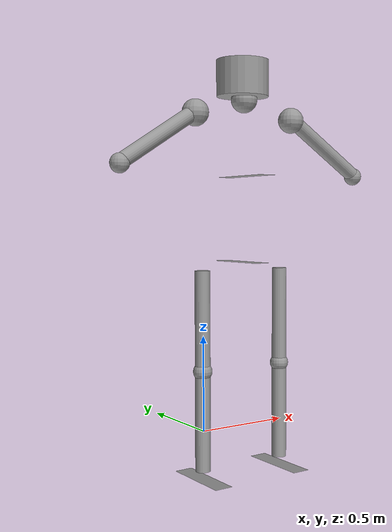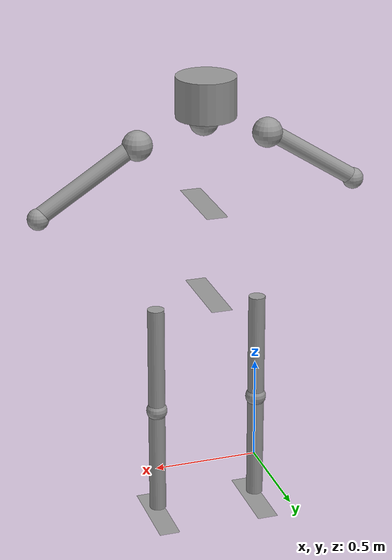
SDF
<?xml version='1.0'?>
<sdf version='1.6'>
  <model name='Humanoid'>
    <link name='link_0'>
      <pose frame=''>-0.004889 0.00055 -0.252459 0 -0 0</pose>
      <inertial>
        <mass>1</mass>
        <inertia>
          <ixx>0.166667</ixx>
          <ixy>0</ixy>
          <ixz>0</ixz>
          <iyy>0.166667</iyy>
          <iyz>0</iyz>
          <izz>0.166667</izz>
        </inertia>
        <pose frame=''>0 0 0 0 -0 0</pose>
      </inertial>
      <gravity>1</gravity>
      <self_collide>0</self_collide>
      <kinematic>0</kinematic>
      <visual name='visual'>
        <pose frame=''>0 0 0 0 -0 0</pose>
        <geometry>
          <box>
            <size>0.1 0.4 0</size>
          </box>
        </geometry>
        <material>
          <lighting>1</lighting>
          <script>
            <uri>file://media/materials/scripts/gazebo.material</uri>
            <name>Gazebo/Grey</name>
          </script>
          <shader type='pixel'>
            <normal_map>__default__</normal_map>
          </shader>
          <ambient>0.3 0.3 0.3 1</ambient>
          <diffuse>0.7 0.7 0.7 1</diffuse>
          <specular>0.01 0.01 0.01 1</specular>
          <emissive>0 0 0 1</emissive>
        </material>
        <transparency>0</transparency>
        <cast_shadows>1</cast_shadows>
      </visual>
      <collision name='collision'>
        <laser_retro>0</laser_retro>
        <max_contacts>10</max_contacts>
        <pose frame=''>0 0 0 0 -0 0</pose>
        <geometry>
          <box>
            <size>0.2 0.4 0.1</size>
          </box>
        </geometry>
        <surface>
          <friction>
            <ode>
              <mu>1</mu>
              <mu2>1</mu2>
              <fdir1>0 0 0</fdir1>
              <slip1>0</slip1>
              <slip2>0</slip2>
            </ode>
            <torsional>
              <coefficient>1</coefficient>
              <patch_radius>0</patch_radius>
              <surface_radius>0</surface_radius>
              <use_patch_radius>1</use_patch_radius>
              <ode>
                <slip>0</slip>
              </ode>
            </torsional>
          </friction>
          <bounce>
            <restitution_coefficient>0</restitution_coefficient>
            <threshold>1e+06</threshold>
          </bounce>
          <contact>
            <collide_without_contact>0</collide_without_contact>
            <collide_without_contact_bitmask>1</collide_without_contact_bitmask>
            <collide_bitmask>1</collide_bitmask>
            <ode>
              <soft_cfm>0</soft_cfm>
              <soft_erp>0.2</soft_erp>
              <kp>1e+13</kp>
              <kd>1</kd>
              <max_vel>0.01</max_vel>
              <min_depth>0</min_depth>
            </ode>
            <bullet>
              <split_impulse>1</split_impulse>
              <split_impulse_penetration_threshold>-0.01</split_impulse_penetration_threshold>
              <soft_cfm>0</soft_cfm>
              <soft_erp>0.2</soft_erp>
              <kp>1e+13</kp>
              <kd>1</kd>
            </bullet>
          </contact>
        </surface>
      </collision>
    </link>
    <link name='link_0_clone'>
      <pose frame=''>0.495111 0.00055 -0.252459 0 -0 0</pose>
      <inertial>
        <mass>1</mass>
        <inertia>
          <ixx>0.166667</ixx>
          <ixy>0</ixy>
          <ixz>0</ixz>
          <iyy>0.166667</iyy>
          <iyz>0</iyz>
          <izz>0.166667</izz>
        </inertia>
        <pose frame=''>0 0 0 0 -0 0</pose>
      </inertial>
      <self_collide>0</self_collide>
      <kinematic>0</kinematic>
      <gravity>1</gravity>
      <visual name='visual'>
        <pose frame=''>0 0 0 0 -0 0</pose>
        <geometry>
          <box>
            <size>0.1 0.4 0</size>
          </box>
        </geometry>
        <material>
          <lighting>1</lighting>
          <script>
            <uri>file://media/materials/scripts/gazebo.material</uri>
            <name>Gazebo/Grey</name>
          </script>
          <shader type='pixel'>
            <normal_map>__default__</normal_map>
          </shader>
          <ambient>0.3 0.3 0.3 1</ambient>
          <diffuse>0.7 0.7 0.7 1</diffuse>
          <specular>0.01 0.01 0.01 1</specular>
          <emissive>0 0 0 1</emissive>
        </material>
        <transparency>0</transparency>
        <cast_shadows>1</cast_shadows>
      </visual>
      <collision name='collision'>
        <laser_retro>0</laser_retro>
        <max_contacts>10</max_contacts>
        <pose frame=''>0 0 0 0 -0 0</pose>
        <geometry>
          <box>
            <size>0.2 0.4 0.1</size>
          </box>
        </geometry>
        <surface>
          <friction>
            <ode>
              <mu>1</mu>
              <mu2>1</mu2>
              <fdir1>0 0 0</fdir1>
              <slip1>0</slip1>
              <slip2>0</slip2>
            </ode>
            <torsional>
              <coefficient>1</coefficient>
              <patch_radius>0</patch_radius>
              <surface_radius>0</surface_radius>
              <use_patch_radius>1</use_patch_radius>
              <ode>
                <slip>0</slip>
              </ode>
            </torsional>
          </friction>
          <bounce>
            <restitution_coefficient>0</restitution_coefficient>
            <threshold>1e+06</threshold>
          </bounce>
          <contact>
            <collide_without_contact>0</collide_without_contact>
            <collide_without_contact_bitmask>1</collide_without_contact_bitmask>
            <collide_bitmask>1</collide_bitmask>
            <ode>
              <soft_cfm>0</soft_cfm>
              <soft_erp>0.2</soft_erp>
              <kp>1e+13</kp>
              <kd>1</kd>
              <max_vel>0.01</max_vel>
              <min_depth>0</min_depth>
            </ode>
            <bullet>
              <split_impulse>1</split_impulse>
              <split_impulse_penetration_threshold>-0.01</split_impulse_penetration_threshold>
              <soft_cfm>0</soft_cfm>
              <soft_erp>0.2</soft_erp>
              <kp>1e+13</kp>
              <kd>1</kd>
            </bullet>
          </contact>
        </surface>
      </collision>
    </link>
    <link name='link_0_clone_0'>
      <pose frame=''>0.236509 0.00055 0.882061 0 -0 0</pose>
      <inertial>
        <mass>1</mass>
        <inertia>
          <ixx>0.166667</ixx>
          <ixy>0</ixy>
          <ixz>0</ixz>
          <iyy>0.166667</iyy>
          <iyz>0</iyz>
          <izz>0.166667</izz>
        </inertia>
        <pose frame=''>0 0 0 0 -0 0</pose>
      </inertial>
      <self_collide>0</self_collide>
      <kinematic>0</kinematic>
      <gravity>1</gravity>
      <visual name='visual'>
        <pose frame=''>0 0 0 0 -0 0</pose>
        <geometry>
          <box>
            <size>0.1 0.4 0</size>
          </box>
        </geometry>
        <material>
          <lighting>1</lighting>
          <script>
            <uri>file://media/materials/scripts/gazebo.material</uri>
            <name>Gazebo/Grey</name>
          </script>
          <shader type='pixel'>
            <normal_map>__default__</normal_map>
          </shader>
          <ambient>0.3 0.3 0.3 1</ambient>
          <diffuse>0.7 0.7 0.7 1</diffuse>
          <specular>0.01 0.01 0.01 1</specular>
          <emissive>0 0 0 1</emissive>
        </material>
        <transparency>0</transparency>
        <cast_shadows>1</cast_shadows>
      </visual>
      <collision name='collision'>
        <laser_retro>0</laser_retro>
        <max_contacts>10</max_contacts>
        <pose frame=''>0 0 0 0 -0 0</pose>
        <geometry>
          <box>
            <size>0.8 0.4 0.1</size>
          </box>
        </geometry>
        <surface>
          <friction>
            <ode>
              <mu>1</mu>
              <mu2>1</mu2>
              <fdir1>0 0 0</fdir1>
              <slip1>0</slip1>
              <slip2>0</slip2>
            </ode>
            <torsional>
              <coefficient>1</coefficient>
              <patch_radius>0</patch_radius>
              <surface_radius>0</surface_radius>
              <use_patch_radius>1</use_patch_radius>
              <ode>
                <slip>0</slip>
              </ode>
            </torsional>
          </friction>
          <bounce>
            <restitution_coefficient>0</restitution_coefficient>
            <threshold>1e+06</threshold>
          </bounce>
          <contact>
            <collide_without_contact>0</collide_without_contact>
            <collide_without_contact_bitmask>1</collide_without_contact_bitmask>
            <collide_bitmask>1</collide_bitmask>
            <ode>
              <soft_cfm>0</soft_cfm>
              <soft_erp>0.2</soft_erp>
              <kp>1e+13</kp>
              <kd>1</kd>
              <max_vel>0.01</max_vel>
              <min_depth>0</min_depth>
            </ode>
            <bullet>
              <split_impulse>1</split_impulse>
              <split_impulse_penetration_threshold>-0.01</split_impulse_penetration_threshold>
              <soft_cfm>0</soft_cfm>
              <soft_erp>0.2</soft_erp>
              <kp>1e+13</kp>
              <kd>1</kd>
            </bullet>
          </contact>
        </surface>
      </collision>
    </link>
    <link name='link_0_clone_0_clone'>
      <pose frame=''>0.257705 -0.010421 1.3366 0 -0 0</pose>
      <inertial>
        <mass>1</mass>
        <inertia>
          <ixx>0.166667</ixx>
          <ixy>0</ixy>
          <ixz>0</ixz>
          <iyy>0.166667</iyy>
          <iyz>0</iyz>
          <izz>0.166667</izz>
        </inertia>
        <pose frame=''>0 0 0 0 -0 0</pose>
      </inertial>
      <self_collide>0</self_collide>
      <kinematic>0</kinematic>
      <gravity>1</gravity>
      <visual name='visual'>
        <pose frame=''>0 0 0 0 -0 0</pose>
        <geometry>
          <box>
            <size>0.1 0.4 0</size>
          </box>
        </geometry>
        <material>
          <lighting>1</lighting>
          <script>
            <uri>file://media/materials/scripts/gazebo.material</uri>
            <name>Gazebo/Grey</name>
          </script>
          <shader type='pixel'>
            <normal_map>__default__</normal_map>
          </shader>
          <ambient>0.3 0.3 0.3 1</ambient>
          <diffuse>0.7 0.7 0.7 1</diffuse>
          <specular>0.01 0.01 0.01 1</specular>
          <emissive>0 0 0 1</emissive>
        </material>
        <transparency>0</transparency>
        <cast_shadows>1</cast_shadows>
      </visual>
      <collision name='collision'>
        <laser_retro>0</laser_retro>
        <max_contacts>10</max_contacts>
        <pose frame=''>0 0 0 0 -0 0</pose>
        <geometry>
          <box>
            <size>0.6 0.2 0.8</size>
          </box>
        </geometry>
        <surface>
          <friction>
            <ode>
              <mu>1</mu>
              <mu2>1</mu2>
              <fdir1>0 0 0</fdir1>
              <slip1>0</slip1>
              <slip2>0</slip2>
            </ode>
            <torsional>
              <coefficient>1</coefficient>
              <patch_radius>0</patch_radius>
              <surface_radius>0</surface_radius>
              <use_patch_radius>1</use_patch_radius>
              <ode>
                <slip>0</slip>
              </ode>
            </torsional>
          </friction>
          <bounce>
            <restitution_coefficient>0</restitution_coefficient>
            <threshold>1e+06</threshold>
          </bounce>
          <contact>
            <collide_without_contact>0</collide_without_contact>
            <collide_without_contact_bitmask>1</collide_without_contact_bitmask>
            <collide_bitmask>1</collide_bitmask>
            <ode>
              <soft_cfm>0</soft_cfm>
              <soft_erp>0.2</soft_erp>
              <kp>1e+13</kp>
              <kd>1</kd>
              <max_vel>0.01</max_vel>
              <min_depth>0</min_depth>
            </ode>
            <bullet>
              <split_impulse>1</split_impulse>
              <split_impulse_penetration_threshold>-0.01</split_impulse_penetration_threshold>
              <soft_cfm>0</soft_cfm>
              <soft_erp>0.2</soft_erp>
              <kp>1e+13</kp>
              <kd>1</kd>
            </bullet>
          </contact>
        </surface>
      </collision>
    </link>
    <link name='link_1'>
      <pose frame=''>-0.004889 0.00055 0.039611 0 -0 0</pose>
      <inertial>
        <mass>1</mass>
        <inertia>
          <ixx>0.145833</ixx>
          <ixy>0</ixy>
          <ixz>0</ixz>
          <iyy>0.145833</iyy>
          <iyz>0</iyz>
          <izz>0.125</izz>
        </inertia>
        <pose frame=''>0 0 0 0 -0 0</pose>
      </inertial>
      <gravity>1</gravity>
      <self_collide>0</self_collide>
      <kinematic>0</kinematic>
      <visual name='visual'>
        <pose frame=''>0 0 0 0 -0 0</pose>
        <geometry>
          <cylinder>
            <radius>0.04</radius>
            <length>0.5</length>
          </cylinder>
        </geometry>
        <material>
          <lighting>1</lighting>
          <script>
            <uri>file://media/materials/scripts/gazebo.material</uri>
            <name>Gazebo/Grey</name>
          </script>
          <shader type='pixel'>
            <normal_map>__default__</normal_map>
          </shader>
          <ambient>0.3 0.3 0.3 1</ambient>
          <diffuse>0.7 0.7 0.7 1</diffuse>
          <specular>0.01 0.01 0.01 1</specular>
          <emissive>0 0 0 1</emissive>
        </material>
        <transparency>0</transparency>
        <cast_shadows>1</cast_shadows>
      </visual>
      <collision name='collision'>
        <laser_retro>0</laser_retro>
        <max_contacts>10</max_contacts>
        <pose frame=''>0 0 0 0 -0 0</pose>
        <geometry>
          <cylinder>
            <radius>0.04</radius>
            <length>0.5</length>
          </cylinder>
        </geometry>
        <surface>
          <friction>
            <ode>
              <mu>1</mu>
              <mu2>1</mu2>
              <fdir1>0 0 0</fdir1>
              <slip1>0</slip1>
              <slip2>0</slip2>
            </ode>
            <torsional>
              <coefficient>1</coefficient>
              <patch_radius>0</patch_radius>
              <surface_radius>0</surface_radius>
              <use_patch_radius>1</use_patch_radius>
              <ode>
                <slip>0</slip>
              </ode>
            </torsional>
          </friction>
          <bounce>
            <restitution_coefficient>0</restitution_coefficient>
            <threshold>1e+06</threshold>
          </bounce>
          <contact>
            <collide_without_contact>0</collide_without_contact>
            <collide_without_contact_bitmask>1</collide_without_contact_bitmask>
            <collide_bitmask>1</collide_bitmask>
            <ode>
              <soft_cfm>0</soft_cfm>
              <soft_erp>0.2</soft_erp>
              <kp>1e+13</kp>
              <kd>1</kd>
              <max_vel>0.01</max_vel>
              <min_depth>0</min_depth>
            </ode>
            <bullet>
              <split_impulse>1</split_impulse>
              <split_impulse_penetration_threshold>-0.01</split_impulse_penetration_threshold>
              <soft_cfm>0</soft_cfm>
              <soft_erp>0.2</soft_erp>
              <kp>1e+13</kp>
              <kd>1</kd>
            </bullet>
          </contact>
        </surface>
      </collision>
    </link>
    <link name='link_1_clone'>
      <pose frame=''>-0.004889 0.00055 0.592596 0 -0 0</pose>
      <inertial>
        <mass>1</mass>
        <inertia>
          <ixx>0.145833</ixx>
          <ixy>0</ixy>
          <ixz>0</ixz>
          <iyy>0.145833</iyy>
          <iyz>0</iyz>
          <izz>0.125</izz>
        </inertia>
        <pose frame=''>0 0 0 0 -0 0</pose>
      </inertial>
      <self_collide>0</self_collide>
      <kinematic>0</kinematic>
      <gravity>1</gravity>
      <visual name='visual'>
        <pose frame=''>0 0 0 0 -0 0</pose>
        <geometry>
          <cylinder>
            <radius>0.04</radius>
            <length>0.5</length>
          </cylinder>
        </geometry>
        <material>
          <lighting>1</lighting>
          <script>
            <uri>file://media/materials/scripts/gazebo.material</uri>
            <name>Gazebo/Grey</name>
          </script>
          <shader type='pixel'>
            <normal_map>__default__</normal_map>
          </shader>
          <ambient>0.3 0.3 0.3 1</ambient>
          <diffuse>0.7 0.7 0.7 1</diffuse>
          <specular>0.01 0.01 0.01 1</specular>
          <emissive>0 0 0 1</emissive>
        </material>
        <transparency>0</transparency>
        <cast_shadows>1</cast_shadows>
      </visual>
      <collision name='collision'>
        <laser_retro>0</laser_retro>
        <max_contacts>10</max_contacts>
        <pose frame=''>0 0 0 0 -0 0</pose>
        <geometry>
          <cylinder>
            <radius>0.04</radius>
            <length>0.5</length>
          </cylinder>
        </geometry>
        <surface>
          <friction>
            <ode>
              <mu>1</mu>
              <mu2>1</mu2>
              <fdir1>0 0 0</fdir1>
              <slip1>0</slip1>
              <slip2>0</slip2>
            </ode>
            <torsional>
              <coefficient>1</coefficient>
              <patch_radius>0</patch_radius>
              <surface_radius>0</surface_radius>
              <use_patch_radius>1</use_patch_radius>
              <ode>
                <slip>0</slip>
              </ode>
            </torsional>
          </friction>
          <bounce>
            <restitution_coefficient>0</restitution_coefficient>
            <threshold>1e+06</threshold>
          </bounce>
          <contact>
            <collide_without_contact>0</collide_without_contact>
            <collide_without_contact_bitmask>1</collide_without_contact_bitmask>
            <collide_bitmask>1</collide_bitmask>
            <ode>
              <soft_cfm>0</soft_cfm>
              <soft_erp>0.2</soft_erp>
              <kp>1e+13</kp>
              <kd>1</kd>
              <max_vel>0.01</max_vel>
              <min_depth>0</min_depth>
            </ode>
            <bullet>
              <split_impulse>1</split_impulse>
              <split_impulse_penetration_threshold>-0.01</split_impulse_penetration_threshold>
              <soft_cfm>0</soft_cfm>
              <soft_erp>0.2</soft_erp>
              <kp>1e+13</kp>
              <kd>1</kd>
            </bullet>
          </contact>
        </surface>
      </collision>
    </link>
    <link name='link_1_clone_0'>
      <pose frame=''>0.495111 0.00055 0.039611 0 -0 0</pose>
      <inertial>
        <mass>1</mass>
        <inertia>
          <ixx>0.145833</ixx>
          <ixy>0</ixy>
          <ixz>0</ixz>
          <iyy>0.145833</iyy>
          <iyz>0</iyz>
          <izz>0.125</izz>
        </inertia>
        <pose frame=''>0 0 0 0 -0 0</pose>
      </inertial>
      <self_collide>0</self_collide>
      <kinematic>0</kinematic>
      <gravity>1</gravity>
      <visual name='visual'>
        <pose frame=''>0 0 0 0 -0 0</pose>
        <geometry>
          <cylinder>
            <radius>0.04</radius>
            <length>0.5</length>
          </cylinder>
        </geometry>
        <material>
          <lighting>1</lighting>
          <script>
            <uri>file://media/materials/scripts/gazebo.material</uri>
            <name>Gazebo/Grey</name>
          </script>
          <shader type='pixel'>
            <normal_map>__default__</normal_map>
          </shader>
          <ambient>0.3 0.3 0.3 1</ambient>
          <diffuse>0.7 0.7 0.7 1</diffuse>
          <specular>0.01 0.01 0.01 1</specular>
          <emissive>0 0 0 1</emissive>
        </material>
        <transparency>0</transparency>
        <cast_shadows>1</cast_shadows>
      </visual>
      <collision name='collision'>
        <laser_retro>0</laser_retro>
        <max_contacts>10</max_contacts>
        <pose frame=''>0 0 0 0 -0 0</pose>
        <geometry>
          <cylinder>
            <radius>0.04</radius>
            <length>0.5</length>
          </cylinder>
        </geometry>
        <surface>
          <friction>
            <ode>
              <mu>1</mu>
              <mu2>1</mu2>
              <fdir1>0 0 0</fdir1>
              <slip1>0</slip1>
              <slip2>0</slip2>
            </ode>
            <torsional>
              <coefficient>1</coefficient>
              <patch_radius>0</patch_radius>
              <surface_radius>0</surface_radius>
              <use_patch_radius>1</use_patch_radius>
              <ode>
                <slip>0</slip>
              </ode>
            </torsional>
          </friction>
          <bounce>
            <restitution_coefficient>0</restitution_coefficient>
            <threshold>1e+06</threshold>
          </bounce>
          <contact>
            <collide_without_contact>0</collide_without_contact>
            <collide_without_contact_bitmask>1</collide_without_contact_bitmask>
            <collide_bitmask>1</collide_bitmask>
            <ode>
              <soft_cfm>0</soft_cfm>
              <soft_erp>0.2</soft_erp>
              <kp>1e+13</kp>
              <kd>1</kd>
              <max_vel>0.01</max_vel>
              <min_depth>0</min_depth>
            </ode>
            <bullet>
              <split_impulse>1</split_impulse>
              <split_impulse_penetration_threshold>-0.01</split_impulse_penetration_threshold>
              <soft_cfm>0</soft_cfm>
              <soft_erp>0.2</soft_erp>
              <kp>1e+13</kp>
              <kd>1</kd>
            </bullet>
          </contact>
        </surface>
      </collision>
    </link>
    <link name='link_1_clone_clone'>
      <pose frame=''>0.495111 0.00055 0.592596 0 -0 0</pose>
      <inertial>
        <mass>1</mass>
        <inertia>
          <ixx>0.145833</ixx>
          <ixy>0</ixy>
          <ixz>0</ixz>
          <iyy>0.145833</iyy>
          <iyz>0</iyz>
          <izz>0.125</izz>
        </inertia>
        <pose frame=''>0 0 0 0 -0 0</pose>
      </inertial>
      <self_collide>0</self_collide>
      <kinematic>0</kinematic>
      <gravity>1</gravity>
      <visual name='visual'>
        <pose frame=''>0 0 0 0 -0 0</pose>
        <geometry>
          <cylinder>
            <radius>0.04</radius>
            <length>0.5</length>
          </cylinder>
        </geometry>
        <material>
          <lighting>1</lighting>
          <script>
            <uri>file://media/materials/scripts/gazebo.material</uri>
            <name>Gazebo/Grey</name>
          </script>
          <shader type='pixel'>
            <normal_map>__default__</normal_map>
          </shader>
          <ambient>0.3 0.3 0.3 1</ambient>
          <diffuse>0.7 0.7 0.7 1</diffuse>
          <specular>0.01 0.01 0.01 1</specular>
          <emissive>0 0 0 1</emissive>
        </material>
        <transparency>0</transparency>
        <cast_shadows>1</cast_shadows>
      </visual>
      <collision name='collision'>
        <laser_retro>0</laser_retro>
        <max_contacts>10</max_contacts>
        <pose frame=''>0 0 0 0 -0 0</pose>
        <geometry>
          <cylinder>
            <radius>0.04</radius>
            <length>0.5</length>
          </cylinder>
        </geometry>
        <surface>
          <friction>
            <ode>
              <mu>1</mu>
              <mu2>1</mu2>
              <fdir1>0 0 0</fdir1>
              <slip1>0</slip1>
              <slip2>0</slip2>
            </ode>
            <torsional>
              <coefficient>1</coefficient>
              <patch_radius>0</patch_radius>
              <surface_radius>0</surface_radius>
              <use_patch_radius>1</use_patch_radius>
              <ode>
                <slip>0</slip>
              </ode>
            </torsional>
          </friction>
          <bounce>
            <restitution_coefficient>0</restitution_coefficient>
            <threshold>1e+06</threshold>
          </bounce>
          <contact>
            <collide_without_contact>0</collide_without_contact>
            <collide_without_contact_bitmask>1</collide_without_contact_bitmask>
            <collide_bitmask>1</collide_bitmask>
            <ode>
              <soft_cfm>0</soft_cfm>
              <soft_erp>0.2</soft_erp>
              <kp>1e+13</kp>
              <kd>1</kd>
              <max_vel>0.01</max_vel>
              <min_depth>0</min_depth>
            </ode>
            <bullet>
              <split_impulse>1</split_impulse>
              <split_impulse_penetration_threshold>-0.01</split_impulse_penetration_threshold>
              <soft_cfm>0</soft_cfm>
              <soft_erp>0.2</soft_erp>
              <kp>1e+13</kp>
              <kd>1</kd>
            </bullet>
          </contact>
        </surface>
      </collision>
    </link>
    <link name='link_1_clone_clone_clone'>
      <pose frame=''>-0.282285 -0.009807 1.50785 0 1 0</pose>
      <inertial>
        <mass>1</mass>
        <inertia>
          <ixx>0.145833</ixx>
          <ixy>0</ixy>
          <ixz>0</ixz>
          <iyy>0.145833</iyy>
          <iyz>0</iyz>
          <izz>0.125</izz>
        </inertia>
        <pose frame=''>0 0 0 0 1 0</pose>
      </inertial>
      <self_collide>0</self_collide>
      <kinematic>0</kinematic>
      <gravity>1</gravity>
      <visual name='visual'>
        <pose frame=''>0 0 0 0 -0 0</pose>
        <geometry>
          <cylinder>
            <radius>0.04</radius>
            <length>0.5</length>
          </cylinder>
        </geometry>
        <material>
          <lighting>1</lighting>
          <script>
            <uri>file://media/materials/scripts/gazebo.material</uri>
            <name>Gazebo/Grey</name>
          </script>
          <shader type='pixel'>
            <normal_map>__default__</normal_map>
          </shader>
          <ambient>0.3 0.3 0.3 1</ambient>
          <diffuse>0.7 0.7 0.7 1</diffuse>
          <specular>0.01 0.01 0.01 1</specular>
          <emissive>0 0 0 1</emissive>
        </material>
        <transparency>0</transparency>
        <cast_shadows>1</cast_shadows>
      </visual>
      <collision name='collision'>
        <laser_retro>0</laser_retro>
        <max_contacts>10</max_contacts>
        <pose frame=''>0 0 0 0 -0 0</pose>
        <geometry>
          <cylinder>
            <radius>0.04</radius>
            <length>0.5</length>
          </cylinder>
        </geometry>
        <surface>
          <friction>
            <ode>
              <mu>1</mu>
              <mu2>1</mu2>
              <fdir1>0 0 0</fdir1>
              <slip1>0</slip1>
              <slip2>0</slip2>
            </ode>
            <torsional>
              <coefficient>1</coefficient>
              <patch_radius>0</patch_radius>
              <surface_radius>0</surface_radius>
              <use_patch_radius>1</use_patch_radius>
              <ode>
                <slip>0</slip>
              </ode>
            </torsional>
          </friction>
          <bounce>
            <restitution_coefficient>0</restitution_coefficient>
            <threshold>1e+06</threshold>
          </bounce>
          <contact>
            <collide_without_contact>0</collide_without_contact>
            <collide_without_contact_bitmask>1</collide_without_contact_bitmask>
            <collide_bitmask>1</collide_bitmask>
            <ode>
              <soft_cfm>0</soft_cfm>
              <soft_erp>0.2</soft_erp>
              <kp>1e+13</kp>
              <kd>1</kd>
              <max_vel>0.01</max_vel>
              <min_depth>0</min_depth>
            </ode>
            <bullet>
              <split_impulse>1</split_impulse>
              <split_impulse_penetration_threshold>-0.01</split_impulse_penetration_threshold>
              <soft_cfm>0</soft_cfm>
              <soft_erp>0.2</soft_erp>
              <kp>1e+13</kp>
              <kd>1</kd>
            </bullet>
          </contact>
        </surface>
      </collision>
    </link>
    <link name='link_1_clone_clone_clone_clone'>
      <pose frame=''>0.823257 -0.001053 1.49883 0 -1 0</pose>
      <inertial>
        <mass>1</mass>
        <inertia>
          <ixx>0.145833</ixx>
          <ixy>0</ixy>
          <ixz>0</ixz>
          <iyy>0.145833</iyy>
          <iyz>0</iyz>
          <izz>0.125</izz>
        </inertia>
        <pose frame=''>0 0 0 0 -1 0</pose>
      </inertial>
      <self_collide>0</self_collide>
      <kinematic>0</kinematic>
      <gravity>1</gravity>
      <visual name='visual'>
        <pose frame=''>0 0 0 0 -0 0</pose>
        <geometry>
          <cylinder>
            <radius>0.04</radius>
            <length>0.5</length>
          </cylinder>
        </geometry>
        <material>
          <lighting>1</lighting>
          <script>
            <uri>file://media/materials/scripts/gazebo.material</uri>
            <name>Gazebo/Grey</name>
          </script>
          <shader type='pixel'>
            <normal_map>__default__</normal_map>
          </shader>
          <ambient>0.3 0.3 0.3 1</ambient>
          <diffuse>0.7 0.7 0.7 1</diffuse>
          <specular>0.01 0.01 0.01 1</specular>
          <emissive>0 0 0 1</emissive>
        </material>
        <transparency>0</transparency>
        <cast_shadows>1</cast_shadows>
      </visual>
      <collision name='collision'>
        <laser_retro>0</laser_retro>
        <max_contacts>10</max_contacts>
        <pose frame=''>0 0 0 0 -0 0</pose>
        <geometry>
          <cylinder>
            <radius>0.04</radius>
            <length>0.5</length>
          </cylinder>
        </geometry>
        <surface>
          <friction>
            <ode>
              <mu>1</mu>
              <mu2>1</mu2>
              <fdir1>0 0 0</fdir1>
              <slip1>0</slip1>
              <slip2>0</slip2>
            </ode>
            <torsional>
              <coefficient>1</coefficient>
              <patch_radius>0</patch_radius>
              <surface_radius>0</surface_radius>
              <use_patch_radius>1</use_patch_radius>
              <ode>
                <slip>0</slip>
              </ode>
            </torsional>
          </friction>
          <bounce>
            <restitution_coefficient>0</restitution_coefficient>
            <threshold>1e+06</threshold>
          </bounce>
          <contact>
            <collide_without_contact>0</collide_without_contact>
            <collide_without_contact_bitmask>1</collide_without_contact_bitmask>
            <collide_bitmask>1</collide_bitmask>
            <ode>
              <soft_cfm>0</soft_cfm>
              <soft_erp>0.2</soft_erp>
              <kp>1e+13</kp>
              <kd>1</kd>
              <max_vel>0.01</max_vel>
              <min_depth>0</min_depth>
            </ode>
            <bullet>
              <split_impulse>1</split_impulse>
              <split_impulse_penetration_threshold>-0.01</split_impulse_penetration_threshold>
              <soft_cfm>0</soft_cfm>
              <soft_erp>0.2</soft_erp>
              <kp>1e+13</kp>
              <kd>1</kd>
            </bullet>
          </contact>
        </surface>
      </collision>
    </link>
    <link name='link_2_clone'>
      <pose frame=''>-0.004889 0.00055 0.315791 0 -0 0</pose>
      <inertial>
        <mass>1</mass>
        <inertia>
          <ixx>0.1</ixx>
          <ixy>0</ixy>
          <ixz>0</ixz>
          <iyy>0.1</iyy>
          <iyz>0</iyz>
          <izz>0.1</izz>
        </inertia>
        <pose frame=''>0 0 0 0 -0 0</pose>
      </inertial>
      <self_collide>0</self_collide>
      <kinematic>0</kinematic>
      <gravity>1</gravity>
      <visual name='visual'>
        <pose frame=''>0 0 0 0 -0 0</pose>
        <geometry>
          <sphere>
            <radius>0.05</radius>
          </sphere>
        </geometry>
        <material>
          <lighting>1</lighting>
          <script>
            <uri>file://media/materials/scripts/gazebo.material</uri>
            <name>Gazebo/Grey</name>
          </script>
          <shader type='pixel'>
            <normal_map>__default__</normal_map>
          </shader>
          <ambient>0.3 0.3 0.3 1</ambient>
          <diffuse>0.7 0.7 0.7 1</diffuse>
          <specular>0.01 0.01 0.01 1</specular>
          <emissive>0 0 0 1</emissive>
        </material>
        <transparency>0</transparency>
        <cast_shadows>1</cast_shadows>
      </visual>
      <collision name='collision'>
        <laser_retro>0</laser_retro>
        <max_contacts>10</max_contacts>
        <pose frame=''>0 0 0 0 -0 0</pose>
        <geometry>
          <sphere>
            <radius>0.05</radius>
          </sphere>
        </geometry>
        <surface>
          <friction>
            <ode>
              <mu>1</mu>
              <mu2>1</mu2>
              <fdir1>0 0 0</fdir1>
              <slip1>0</slip1>
              <slip2>0</slip2>
            </ode>
            <torsional>
              <coefficient>1</coefficient>
              <patch_radius>0</patch_radius>
              <surface_radius>0</surface_radius>
              <use_patch_radius>1</use_patch_radius>
              <ode>
                <slip>0</slip>
              </ode>
            </torsional>
          </friction>
          <bounce>
            <restitution_coefficient>0</restitution_coefficient>
            <threshold>1e+06</threshold>
          </bounce>
          <contact>
            <collide_without_contact>0</collide_without_contact>
            <collide_without_contact_bitmask>1</collide_without_contact_bitmask>
            <collide_bitmask>1</collide_bitmask>
            <ode>
              <soft_cfm>0</soft_cfm>
              <soft_erp>0.2</soft_erp>
              <kp>1e+13</kp>
              <kd>1</kd>
              <max_vel>0.01</max_vel>
              <min_depth>0</min_depth>
            </ode>
            <bullet>
              <split_impulse>1</split_impulse>
              <split_impulse_penetration_threshold>-0.01</split_impulse_penetration_threshold>
              <soft_cfm>0</soft_cfm>
              <soft_erp>0.2</soft_erp>
              <kp>1e+13</kp>
              <kd>1</kd>
            </bullet>
          </contact>
        </surface>
      </collision>
    </link>
    <link name='link_2_clone_clone'>
      <pose frame=''>0.495111 0.00055 0.315791 0 -0 0</pose>
      <inertial>
        <mass>1</mass>
        <inertia>
          <ixx>0.1</ixx>
          <ixy>0</ixy>
          <ixz>0</ixz>
          <iyy>0.1</iyy>
          <iyz>0</iyz>
          <izz>0.1</izz>
        </inertia>
        <pose frame=''>0 0 0 0 -0 0</pose>
      </inertial>
      <self_collide>0</self_collide>
      <kinematic>0</kinematic>
      <gravity>1</gravity>
      <visual name='visual'>
        <pose frame=''>0 0 0 0 -0 0</pose>
        <geometry>
          <sphere>
            <radius>0.05</radius>
          </sphere>
        </geometry>
        <material>
          <lighting>1</lighting>
          <script>
            <uri>file://media/materials/scripts/gazebo.material</uri>
            <name>Gazebo/Grey</name>
          </script>
          <shader type='pixel'>
            <normal_map>__default__</normal_map>
          </shader>
          <ambient>0.3 0.3 0.3 1</ambient>
          <diffuse>0.7 0.7 0.7 1</diffuse>
          <specular>0.01 0.01 0.01 1</specular>
          <emissive>0 0 0 1</emissive>
        </material>
        <transparency>0</transparency>
        <cast_shadows>1</cast_shadows>
      </visual>
      <collision name='collision'>
        <laser_retro>0</laser_retro>
        <max_contacts>10</max_contacts>
        <pose frame=''>0 0 0 0 -0 0</pose>
        <geometry>
          <sphere>
            <radius>0.05</radius>
          </sphere>
        </geometry>
        <surface>
          <friction>
            <ode>
              <mu>1</mu>
              <mu2>1</mu2>
              <fdir1>0 0 0</fdir1>
              <slip1>0</slip1>
              <slip2>0</slip2>
            </ode>
            <torsional>
              <coefficient>1</coefficient>
              <patch_radius>0</patch_radius>
              <surface_radius>0</surface_radius>
              <use_patch_radius>1</use_patch_radius>
              <ode>
                <slip>0</slip>
              </ode>
            </torsional>
          </friction>
          <bounce>
            <restitution_coefficient>0</restitution_coefficient>
            <threshold>1e+06</threshold>
          </bounce>
          <contact>
            <collide_without_contact>0</collide_without_contact>
            <collide_without_contact_bitmask>1</collide_without_contact_bitmask>
            <collide_bitmask>1</collide_bitmask>
            <ode>
              <soft_cfm>0</soft_cfm>
              <soft_erp>0.2</soft_erp>
              <kp>1e+13</kp>
              <kd>1</kd>
              <max_vel>0.01</max_vel>
              <min_depth>0</min_depth>
            </ode>
            <bullet>
              <split_impulse>1</split_impulse>
              <split_impulse_penetration_threshold>-0.01</split_impulse_penetration_threshold>
              <soft_cfm>0</soft_cfm>
              <soft_erp>0.2</soft_erp>
              <kp>1e+13</kp>
              <kd>1</kd>
            </bullet>
          </contact>
        </surface>
      </collision>
    </link>
    <link name='link_2_clone_clone_0'>
      <pose frame=''>-0.477308 -0.009214 1.37844 0 -0 0</pose>
      <inertial>
        <mass>1</mass>
        <inertia>
          <ixx>0.1</ixx>
          <ixy>0</ixy>
          <ixz>0</ixz>
          <iyy>0.1</iyy>
          <iyz>0</iyz>
          <izz>0.1</izz>
        </inertia>
        <pose frame=''>0 0 0 0 -0 0</pose>
      </inertial>
      <self_collide>0</self_collide>
      <kinematic>0</kinematic>
      <visual name='visual'>
        <pose frame=''>0 0 0 0 -0 0</pose>
        <geometry>
          <sphere>
            <radius>0.05</radius>
          </sphere>
        </geometry>
        <material>
          <lighting>1</lighting>
          <script>
            <uri>file://media/materials/scripts/gazebo.material</uri>
            <name>Gazebo/Grey</name>
          </script>
          <shader type='pixel'>
            <normal_map>__default__</normal_map>
          </shader>
          <ambient>0.3 0.3 0.3 1</ambient>
          <diffuse>0.7 0.7 0.7 1</diffuse>
          <specular>0.01 0.01 0.01 1</specular>
          <emissive>0 0 0 1</emissive>
        </material>
        <transparency>0</transparency>
        <cast_shadows>1</cast_shadows>
      </visual>
      <collision name='collision'>
        <laser_retro>0</laser_retro>
        <max_contacts>10</max_contacts>
        <pose frame=''>0 0 0 0 -0 0</pose>
        <geometry>
          <sphere>
            <radius>0.05</radius>
          </sphere>
        </geometry>
        <surface>
          <friction>
            <ode>
              <mu>1</mu>
              <mu2>1</mu2>
              <fdir1>0 0 0</fdir1>
              <slip1>0</slip1>
              <slip2>0</slip2>
            </ode>
            <torsional>
              <coefficient>1</coefficient>
              <patch_radius>0</patch_radius>
              <surface_radius>0</surface_radius>
              <use_patch_radius>1</use_patch_radius>
              <ode>
                <slip>0</slip>
              </ode>
            </torsional>
          </friction>
          <bounce>
            <restitution_coefficient>0</restitution_coefficient>
            <threshold>1e+06</threshold>
          </bounce>
          <contact>
            <collide_without_contact>0</collide_without_contact>
            <collide_without_contact_bitmask>1</collide_without_contact_bitmask>
            <collide_bitmask>1</collide_bitmask>
            <ode>
              <soft_cfm>0</soft_cfm>
              <soft_erp>0.2</soft_erp>
              <kp>1e+13</kp>
              <kd>1</kd>
              <max_vel>0.01</max_vel>
              <min_depth>0</min_depth>
            </ode>
            <bullet>
              <split_impulse>1</split_impulse>
              <split_impulse_penetration_threshold>-0.01</split_impulse_penetration_threshold>
              <soft_cfm>0</soft_cfm>
              <soft_erp>0.2</soft_erp>
              <kp>1e+13</kp>
              <kd>1</kd>
            </bullet>
          </contact>
        </surface>
      </collision>
    </link>
    <link name='link_2_clone_clone_0_clone'>
      <pose frame=''>1.03706 0.003787 1.35771 0 -0 0</pose>
      <inertial>
        <mass>1</mass>
        <inertia>
          <ixx>0.1</ixx>
          <ixy>0</ixy>
          <ixz>0</ixz>
          <iyy>0.1</iyy>
          <iyz>0</iyz>
          <izz>0.1</izz>
        </inertia>
        <pose frame=''>0 0 0 0 -0 0</pose>
      </inertial>
      <self_collide>0</self_collide>
      <kinematic>0</kinematic>
      <visual name='visual'>
        <pose frame=''>0 0 0 0 -0 0</pose>
        <geometry>
          <sphere>
            <radius>0.05</radius>
          </sphere>
        </geometry>
        <material>
          <lighting>1</lighting>
          <script>
            <uri>file://media/materials/scripts/gazebo.material</uri>
            <name>Gazebo/Grey</name>
          </script>
          <shader type='pixel'>
            <normal_map>__default__</normal_map>
          </shader>
          <ambient>0.3 0.3 0.3 1</ambient>
          <diffuse>0.7 0.7 0.7 1</diffuse>
          <specular>0.01 0.01 0.01 1</specular>
          <emissive>0 0 0 1</emissive>
        </material>
        <transparency>0</transparency>
        <cast_shadows>1</cast_shadows>
      </visual>
      <collision name='collision'>
        <laser_retro>0</laser_retro>
        <max_contacts>10</max_contacts>
        <pose frame=''>0 0 0 0 -0 0</pose>
        <geometry>
          <sphere>
            <radius>0.05</radius>
          </sphere>
        </geometry>
        <surface>
          <friction>
            <ode>
              <mu>1</mu>
              <mu2>1</mu2>
              <fdir1>0 0 0</fdir1>
              <slip1>0</slip1>
              <slip2>0</slip2>
            </ode>
            <torsional>
              <coefficient>1</coefficient>
              <patch_radius>0</patch_radius>
              <surface_radius>0</surface_radius>
              <use_patch_radius>1</use_patch_radius>
              <ode>
                <slip>0</slip>
              </ode>
            </torsional>
          </friction>
          <bounce>
            <restitution_coefficient>0</restitution_coefficient>
            <threshold>1e+06</threshold>
          </bounce>
          <contact>
            <collide_without_contact>0</collide_without_contact>
            <collide_without_contact_bitmask>1</collide_without_contact_bitmask>
            <collide_bitmask>1</collide_bitmask>
            <ode>
              <soft_cfm>0</soft_cfm>
              <soft_erp>0.2</soft_erp>
              <kp>1e+13</kp>
              <kd>1</kd>
              <max_vel>0.01</max_vel>
              <min_depth>0</min_depth>
            </ode>
            <bullet>
              <split_impulse>1</split_impulse>
              <split_impulse_penetration_threshold>-0.01</split_impulse_penetration_threshold>
              <soft_cfm>0</soft_cfm>
              <soft_erp>0.2</soft_erp>
              <kp>1e+13</kp>
              <kd>1</kd>
            </bullet>
          </contact>
        </surface>
      </collision>
    </link>
    <link name='link_2_clone_clone_clone'>
      <pose frame=''>0.57297 0.000563 1.6512 0 -0 0</pose>
      <inertial>
        <mass>1</mass>
        <inertia>
          <ixx>0.1</ixx>
          <ixy>0</ixy>
          <ixz>0</ixz>
          <iyy>0.1</iyy>
          <iyz>0</iyz>
          <izz>0.1</izz>
        </inertia>
        <pose frame=''>0 0 0 0 -0 0</pose>
      </inertial>
      <self_collide>0</self_collide>
      <kinematic>0</kinematic>
      <gravity>1</gravity>
      <visual name='visual'>
        <pose frame=''>0 0 0 0 -0 0</pose>
        <geometry>
          <sphere>
            <radius>0.07</radius>
          </sphere>
        </geometry>
        <material>
          <lighting>1</lighting>
          <script>
            <uri>file://media/materials/scripts/gazebo.material</uri>
            <name>Gazebo/Grey</name>
          </script>
          <shader type='pixel'>
            <normal_map>__default__</normal_map>
          </shader>
          <ambient>0.3 0.3 0.3 1</ambient>
          <diffuse>0.7 0.7 0.7 1</diffuse>
          <specular>0.01 0.01 0.01 1</specular>
          <emissive>0 0 0 1</emissive>
        </material>
        <transparency>0</transparency>
        <cast_shadows>1</cast_shadows>
      </visual>
      <collision name='collision'>
        <laser_retro>0</laser_retro>
        <max_contacts>10</max_contacts>
        <pose frame=''>0 0 0 0 -0 0</pose>
        <geometry>
          <sphere>
            <radius>0.07</radius>
          </sphere>
        </geometry>
        <surface>
          <friction>
            <ode>
              <mu>1</mu>
              <mu2>1</mu2>
              <fdir1>0 0 0</fdir1>
              <slip1>0</slip1>
              <slip2>0</slip2>
            </ode>
            <torsional>
              <coefficient>1</coefficient>
              <patch_radius>0</patch_radius>
              <surface_radius>0</surface_radius>
              <use_patch_radius>1</use_patch_radius>
              <ode>
                <slip>0</slip>
              </ode>
            </torsional>
          </friction>
          <bounce>
            <restitution_coefficient>0</restitution_coefficient>
            <threshold>1e+06</threshold>
          </bounce>
          <contact>
            <collide_without_contact>0</collide_without_contact>
            <collide_without_contact_bitmask>1</collide_without_contact_bitmask>
            <collide_bitmask>1</collide_bitmask>
            <ode>
              <soft_cfm>0</soft_cfm>
              <soft_erp>0.2</soft_erp>
              <kp>1e+13</kp>
              <kd>1</kd>
              <max_vel>0.01</max_vel>
              <min_depth>0</min_depth>
            </ode>
            <bullet>
              <split_impulse>1</split_impulse>
              <split_impulse_penetration_threshold>-0.01</split_impulse_penetration_threshold>
              <soft_cfm>0</soft_cfm>
              <soft_erp>0.2</soft_erp>
              <kp>1e+13</kp>
              <kd>1</kd>
            </bullet>
          </contact>
        </surface>
      </collision>
    </link>
    <link name='link_2_clone_clone_clone_clone'>
      <pose frame=''>-0.044392 0.00109 1.6512 0 -0 0</pose>
      <inertial>
        <mass>1</mass>
        <inertia>
          <ixx>0.1</ixx>
          <ixy>0</ixy>
          <ixz>0</ixz>
          <iyy>0.1</iyy>
          <iyz>0</iyz>
          <izz>0.1</izz>
        </inertia>
        <pose frame=''>0 0 0 0 -0 0</pose>
      </inertial>
      <self_collide>0</self_collide>
      <kinematic>0</kinematic>
      <visual name='visual'>
        <pose frame=''>0 0 0 0 -0 0</pose>
        <geometry>
          <sphere>
            <radius>0.07</radius>
          </sphere>
        </geometry>
        <material>
          <lighting>1</lighting>
          <script>
            <uri>file://media/materials/scripts/gazebo.material</uri>
            <name>Gazebo/Grey</name>
          </script>
          <shader type='pixel'>
            <normal_map>__default__</normal_map>
          </shader>
          <ambient>0.3 0.3 0.3 1</ambient>
          <diffuse>0.7 0.7 0.7 1</diffuse>
          <specular>0.01 0.01 0.01 1</specular>
          <emissive>0 0 0 1</emissive>
        </material>
        <transparency>0</transparency>
        <cast_shadows>1</cast_shadows>
      </visual>
      <collision name='collision'>
        <laser_retro>0</laser_retro>
        <max_contacts>10</max_contacts>
        <pose frame=''>0 0 0 0 -0 0</pose>
        <geometry>
          <sphere>
            <radius>0.07</radius>
          </sphere>
        </geometry>
        <surface>
          <friction>
            <ode>
              <mu>1</mu>
              <mu2>1</mu2>
              <fdir1>0 0 0</fdir1>
              <slip1>0</slip1>
              <slip2>0</slip2>
            </ode>
            <torsional>
              <coefficient>1</coefficient>
              <patch_radius>0</patch_radius>
              <surface_radius>0</surface_radius>
              <use_patch_radius>1</use_patch_radius>
              <ode>
                <slip>0</slip>
              </ode>
            </torsional>
          </friction>
          <bounce>
            <restitution_coefficient>0</restitution_coefficient>
            <threshold>1e+06</threshold>
          </bounce>
          <contact>
            <collide_without_contact>0</collide_without_contact>
            <collide_without_contact_bitmask>1</collide_without_contact_bitmask>
            <collide_bitmask>1</collide_bitmask>
            <ode>
              <soft_cfm>0</soft_cfm>
              <soft_erp>0.2</soft_erp>
              <kp>1e+13</kp>
              <kd>1</kd>
              <max_vel>0.01</max_vel>
              <min_depth>0</min_depth>
            </ode>
            <bullet>
              <split_impulse>1</split_impulse>
              <split_impulse_penetration_threshold>-0.01</split_impulse_penetration_threshold>
              <soft_cfm>0</soft_cfm>
              <soft_erp>0.2</soft_erp>
              <kp>1e+13</kp>
              <kd>1</kd>
            </bullet>
          </contact>
        </surface>
      </collision>
    </link>
    <link name='link_2_clone_clone_clone_clone_0'>
      <pose frame=''>0.261114 0.003938 1.74012 0 -0 0</pose>
      <inertial>
        <mass>1</mass>
        <inertia>
          <ixx>0.1</ixx>
          <ixy>0</ixy>
          <ixz>0</ixz>
          <iyy>0.1</iyy>
          <iyz>0</iyz>
          <izz>0.1</izz>
        </inertia>
        <pose frame=''>0 0 0 0 -0 0</pose>
      </inertial>
      <self_collide>0</self_collide>
      <kinematic>0</kinematic>
      <visual name='visual'>
        <pose frame=''>0 0 0 0 -0 0</pose>
        <geometry>
          <sphere>
            <radius>0.07</radius>
          </sphere>
        </geometry>
        <material>
          <lighting>1</lighting>
          <script>
            <uri>file://media/materials/scripts/gazebo.material</uri>
            <name>Gazebo/Grey</name>
          </script>
          <shader type='pixel'>
            <normal_map>__default__</normal_map>
          </shader>
          <ambient>0.3 0.3 0.3 1</ambient>
          <diffuse>0.7 0.7 0.7 1</diffuse>
          <specular>0.01 0.01 0.01 1</specular>
          <emissive>0 0 0 1</emissive>
        </material>
        <transparency>0</transparency>
        <cast_shadows>1</cast_shadows>
      </visual>
      <collision name='collision'>
        <laser_retro>0</laser_retro>
        <max_contacts>10</max_contacts>
        <pose frame=''>0 0 0 0 -0 0</pose>
        <geometry>
          <sphere>
            <radius>0.07</radius>
          </sphere>
        </geometry>
        <surface>
          <friction>
            <ode>
              <mu>1</mu>
              <mu2>1</mu2>
              <fdir1>0 0 0</fdir1>
              <slip1>0</slip1>
              <slip2>0</slip2>
            </ode>
            <torsional>
              <coefficient>1</coefficient>
              <patch_radius>0</patch_radius>
              <surface_radius>0</surface_radius>
              <use_patch_radius>1</use_patch_radius>
              <ode>
                <slip>0</slip>
              </ode>
            </torsional>
          </friction>
          <bounce>
            <restitution_coefficient>0</restitution_coefficient>
            <threshold>1e+06</threshold>
          </bounce>
          <contact>
            <collide_without_contact>0</collide_without_contact>
            <collide_without_contact_bitmask>1</collide_without_contact_bitmask>
            <collide_bitmask>1</collide_bitmask>
            <ode>
              <soft_cfm>0</soft_cfm>
              <soft_erp>0.2</soft_erp>
              <kp>1e+13</kp>
              <kd>1</kd>
              <max_vel>0.01</max_vel>
              <min_depth>0</min_depth>
            </ode>
            <bullet>
              <split_impulse>1</split_impulse>
              <split_impulse_penetration_threshold>-0.01</split_impulse_penetration_threshold>
              <soft_cfm>0</soft_cfm>
              <soft_erp>0.2</soft_erp>
              <kp>1e+13</kp>
              <kd>1</kd>
            </bullet>
          </contact>
        </surface>
      </collision>
    </link>
    <link name='link_3'>
      <pose frame=''>0.251631 0.003401 1.8507 0 -0 0</pose>
      <inertial>
        <mass>0.0147289</mass>
        <inertia>
          <ixx>0.000115704</ixx>
          <ixy>0</ixy>
          <ixz>0</ixz>
          <iyy>0.000115704</iyy>
          <iyz>0</iyz>
          <izz>0.000142589</izz>
        </inertia>
        <pose frame=''>0 0 0 0 -0 0</pose>
      </inertial>
      <gravity>1</gravity>
      <self_collide>0</self_collide>
      <kinematic>0</kinematic>
      <visual name='visual'>
        <pose frame=''>0 0 0 0 -0 0</pose>
        <geometry>
          <cylinder>
            <radius>0.139147</radius>
            <length>0.190215</length>
          </cylinder>
        </geometry>
        <material>
          <lighting>1</lighting>
          <script>
            <uri>file://media/materials/scripts/gazebo.material</uri>
            <name>Gazebo/Grey</name>
          </script>
          <shader type='pixel'>
            <normal_map>__default__</normal_map>
          </shader>
          <ambient>0.3 0.3 0.3 1</ambient>
          <diffuse>0.7 0.7 0.7 1</diffuse>
          <specular>0.01 0.01 0.01 1</specular>
          <emissive>0 0 0 1</emissive>
        </material>
        <transparency>0</transparency>
        <cast_shadows>1</cast_shadows>
      </visual>
      <collision name='collision'>
        <laser_retro>0</laser_retro>
        <max_contacts>10</max_contacts>
        <pose frame=''>0 0 0 0 -0 0</pose>
        <geometry>
          <cylinder>
            <radius>0.139147</radius>
            <length>0.190215</length>
          </cylinder>
        </geometry>
        <surface>
          <friction>
            <ode>
              <mu>1</mu>
              <mu2>1</mu2>
              <fdir1>0 0 0</fdir1>
              <slip1>0</slip1>
              <slip2>0</slip2>
            </ode>
            <torsional>
              <coefficient>1</coefficient>
              <patch_radius>0</patch_radius>
              <surface_radius>0</surface_radius>
              <use_patch_radius>1</use_patch_radius>
              <ode>
                <slip>0</slip>
              </ode>
            </torsional>
          </friction>
          <bounce>
            <restitution_coefficient>0</restitution_coefficient>
            <threshold>1e+06</threshold>
          </bounce>
          <contact>
            <collide_without_contact>0</collide_without_contact>
            <collide_without_contact_bitmask>1</collide_without_contact_bitmask>
            <collide_bitmask>1</collide_bitmask>
            <ode>
              <soft_cfm>0</soft_cfm>
              <soft_erp>0.2</soft_erp>
              <kp>1e+13</kp>
              <kd>1</kd>
              <max_vel>0.01</max_vel>
              <min_depth>0</min_depth>
            </ode>
            <bullet>
              <split_impulse>1</split_impulse>
              <split_impulse_penetration_threshold>-0.01</split_impulse_penetration_threshold>
              <soft_cfm>0</soft_cfm>
              <soft_erp>0.2</soft_erp>
              <kp>1e+13</kp>
              <kd>1</kd>
            </bullet>
          </contact>
        </surface>
      </collision>
    </link>
    <joint name='link_0_JOINT_0' type='fixed'>
      <parent>link_0</parent>
      <child>link_1</child>
      <pose frame=''>0 0 0 0 -0 0</pose>
      <physics>
        <ode>
          <limit>
            <cfm>0</cfm>
            <erp>0.2</erp>
          </limit>
          <suspension>
            <cfm>0</cfm>
            <erp>0.2</erp>
          </suspension>
        </ode>
      </physics>
    </joint>
    <joint name='link_0_clone_0_JOINT_6' type='fixed'>
      <parent>link_0_clone_0</parent>
      <child>link_1_clone</child>
      <pose frame=''>0 0 0 0 -0 0</pose>
      <physics>
        <ode>
          <limit>
            <cfm>0</cfm>
            <erp>0.2</erp>
          </limit>
          <suspension>
            <cfm>0</cfm>
            <erp>0.2</erp>
          </suspension>
        </ode>
      </physics>
    </joint>
    <joint name='link_0_clone_0_JOINT_7' type='fixed'>
      <parent>link_0_clone_0</parent>
      <child>link_1_clone_clone</child>
      <pose frame=''>0 0 0 0 -0 0</pose>
      <physics>
        <ode>
          <limit>
            <cfm>0</cfm>
            <erp>0.2</erp>
          </limit>
          <suspension>
            <cfm>0</cfm>
            <erp>0.2</erp>
          </suspension>
        </ode>
      </physics>
    </joint>
    <joint name='link_0_clone_0_JOINT_8' type='fixed'>
      <parent>link_0_clone_0</parent>
      <child>link_0_clone_0_clone</child>
      <pose frame=''>0 0 0 0 -0 0</pose>
      <physics>
        <ode>
          <limit>
            <cfm>0</cfm>
            <erp>0.2</erp>
          </limit>
          <suspension>
            <cfm>0</cfm>
            <erp>0.2</erp>
          </suspension>
        </ode>
      </physics>
    </joint>
    <joint name='link_0_clone_0_clone_JOINT_10' type='fixed'>
      <parent>link_0_clone_0_clone</parent>
      <child>link_2_clone_clone_clone</child>
      <pose frame=''>0 0 0 0 -0 0</pose>
      <physics>
        <ode>
          <limit>
            <cfm>0</cfm>
            <erp>0.2</erp>
          </limit>
          <suspension>
            <cfm>0</cfm>
            <erp>0.2</erp>
          </suspension>
        </ode>
      </physics>
    </joint>
    <joint name='link_0_clone_0_clone_JOINT_16' type='fixed'>
      <parent>link_0_clone_0_clone</parent>
      <child>link_2_clone_clone_clone_clone_0</child>
      <pose frame=''>0 0 0 0 -0 0</pose>
      <physics>
        <ode>
          <limit>
            <cfm>0</cfm>
            <erp>0.2</erp>
          </limit>
          <suspension>
            <cfm>0</cfm>
            <erp>0.2</erp>
          </suspension>
        </ode>
      </physics>
    </joint>
    <joint name='link_0_clone_0_clone_JOINT_9' type='fixed'>
      <parent>link_0_clone_0_clone</parent>
      <child>link_2_clone_clone_clone_clone</child>
      <pose frame=''>0 0 0 0 -0 0</pose>
      <physics>
        <ode>
          <limit>
            <cfm>0</cfm>
            <erp>0.2</erp>
          </limit>
          <suspension>
            <cfm>0</cfm>
            <erp>0.2</erp>
          </suspension>
        </ode>
      </physics>
    </joint>
    <joint name='link_0_clone_JOINT_3' type='fixed'>
      <parent>link_0_clone</parent>
      <child>link_1_clone_0</child>
      <pose frame=''>0 0 0 0 -0 0</pose>
      <physics>
        <ode>
          <limit>
            <cfm>0</cfm>
            <erp>0.2</erp>
          </limit>
          <suspension>
            <cfm>0</cfm>
            <erp>0.2</erp>
          </suspension>
        </ode>
      </physics>
    </joint>
    <joint name='link_1_clone_0_JOINT_4' type='fixed'>
      <parent>link_1_clone_0</parent>
      <child>link_2_clone_clone</child>
      <pose frame=''>0 0 0 0 -0 0</pose>
      <physics>
        <ode>
          <limit>
            <cfm>0</cfm>
            <erp>0.2</erp>
          </limit>
          <suspension>
            <cfm>0</cfm>
            <erp>0.2</erp>
          </suspension>
        </ode>
      </physics>
    </joint>
    <joint name='link_1_clone_clone_clone_JOINT_13' type='fixed'>
      <parent>link_1_clone_clone_clone</parent>
      <child>link_2_clone_clone_0</child>
      <pose frame=''>0 0 0 0 -0 0</pose>
      <physics>
        <ode>
          <limit>
            <cfm>0</cfm>
            <erp>0.2</erp>
          </limit>
          <suspension>
            <cfm>0</cfm>
            <erp>0.2</erp>
          </suspension>
        </ode>
      </physics>
    </joint>
    <joint name='link_1_clone_clone_clone_clone_JOINT_14' type='fixed'>
      <parent>link_1_clone_clone_clone_clone</parent>
      <child>link_2_clone_clone_0_clone</child>
      <pose frame=''>0 0 0 0 -0 0</pose>
      <physics>
        <ode>
          <limit>
            <cfm>0</cfm>
            <erp>0.2</erp>
          </limit>
          <suspension>
            <cfm>0</cfm>
            <erp>0.2</erp>
          </suspension>
        </ode>
      </physics>
    </joint>
    <joint name='link_2_clone_clone_JOINT_5' type='fixed'>
      <parent>link_2_clone_clone</parent>
      <child>link_1_clone_clone</child>
      <pose frame=''>0 0 0 0 -0 0</pose>
      <physics>
        <ode>
          <limit>
            <cfm>0</cfm>
            <erp>0.2</erp>
          </limit>
          <suspension>
            <cfm>0</cfm>
            <erp>0.2</erp>
          </suspension>
        </ode>
      </physics>
    </joint>
    <joint name='link_2_clone_clone_clone_JOINT_12' type='fixed'>
      <parent>link_2_clone_clone_clone</parent>
      <child>link_1_clone_clone_clone_clone</child>
      <pose frame=''>0 0 0 0 -0 0</pose>
      <physics>
        <ode>
          <limit>
            <cfm>0</cfm>
            <erp>0.2</erp>
          </limit>
          <suspension>
            <cfm>0</cfm>
            <erp>0.2</erp>
          </suspension>
        </ode>
      </physics>
    </joint>
    <joint name='link_2_clone_clone_clone_clone_0_JOINT_17' type='fixed'>
      <parent>link_2_clone_clone_clone_clone_0</parent>
      <child>link_3</child>
      <pose frame=''>0 0 0 0 -0 0</pose>
      <physics>
        <ode>
          <limit>
            <cfm>0</cfm>
            <erp>0.2</erp>
          </limit>
          <suspension>
            <cfm>0</cfm>
            <erp>0.2</erp>
          </suspension>
        </ode>
      </physics>
    </joint>
    <joint name='link_2_clone_clone_clone_clone_JOINT_11' type='fixed'>
      <parent>link_2_clone_clone_clone_clone</parent>
      <child>link_1_clone_clone_clone</child>
      <pose frame=''>0 0 0 0 -0 0</pose>
      <physics>
        <ode>
          <limit>
            <cfm>0</cfm>
            <erp>0.2</erp>
          </limit>
          <suspension>
            <cfm>0</cfm>
            <erp>0.2</erp>
          </suspension>
        </ode>
      </physics>
    </joint>
    <static>0</static>
    <allow_auto_disable>1</allow_auto_disable>
  </model>
</sdf>
